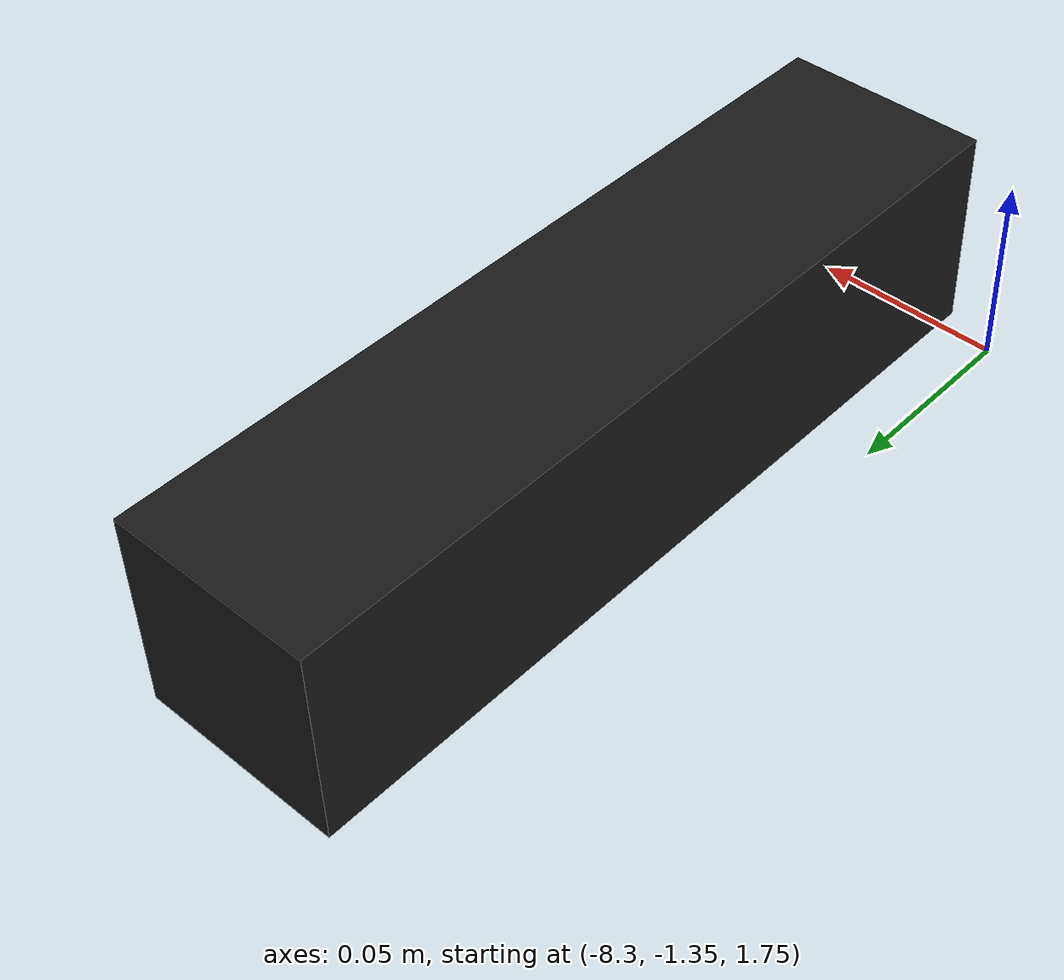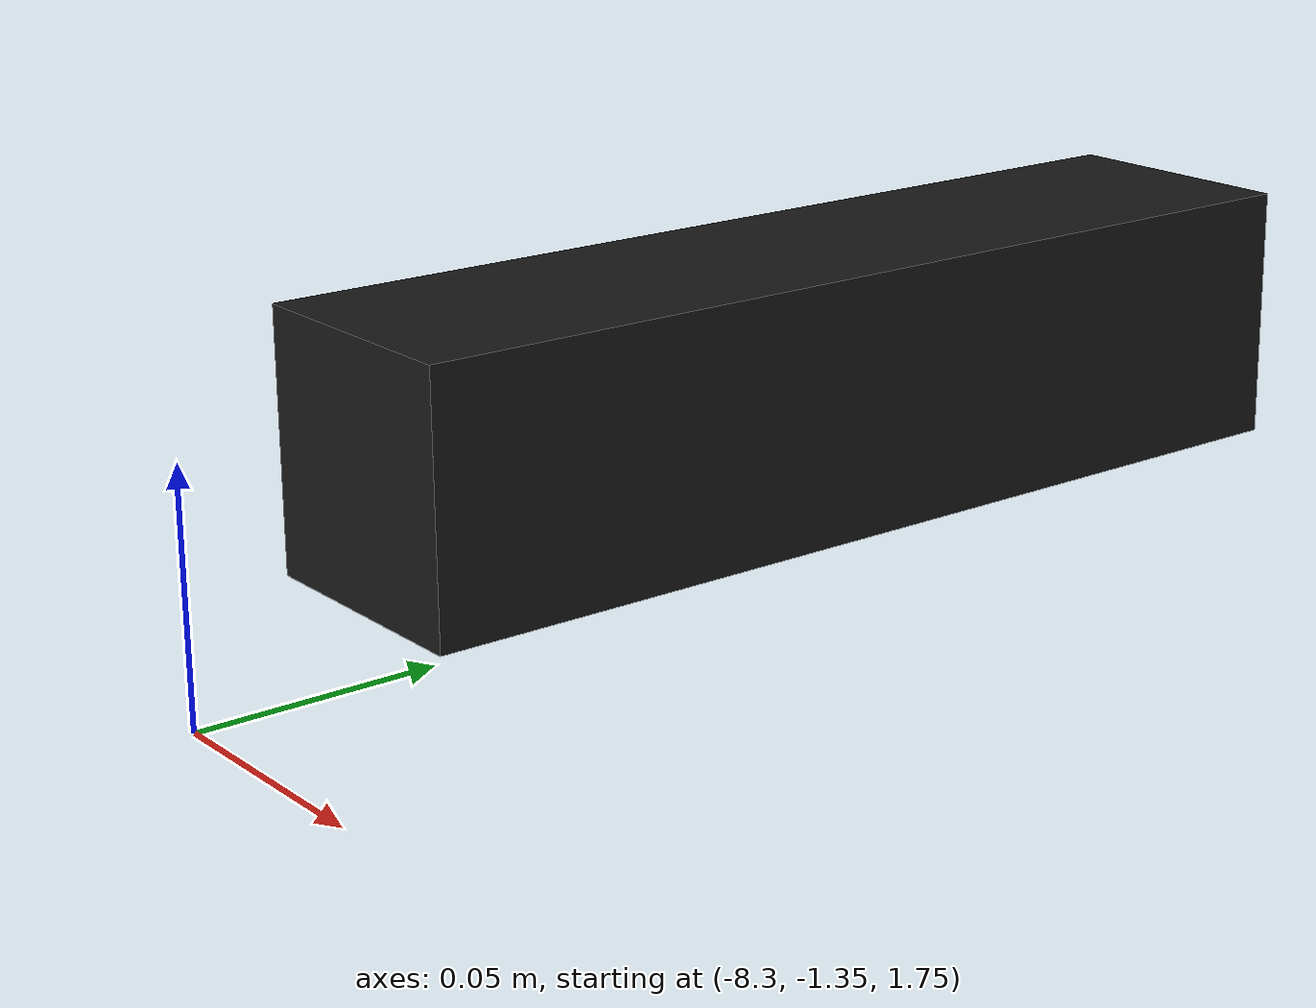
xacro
<?xml version="1.0"?>
<robot name="logical_camera"
  xmlns:xacro="http://www.ros.org/wiki/xacro">
  <xacro:arg name="prefix" default="logical_camera2_"/>
  <xacro:arg name="logical_camera_parent" default="world_interface"/>

  <!-- URDF -->
  <link name="$(arg logical_camera_parent)"/>

  <xacro:include filename="$(find hrwros_support)/urdf/logical_camera/logical_camera.urdf.xacro"/>
  <xacro:logical_camera_urdf prefix="$(arg prefix)" logical_camera_parent="$(arg logical_camera_parent)">
    <origin xyz="-8.3 -1.23 1.8" rpy="0 1.5708 0"/>
  </xacro:logical_camera_urdf>

  <!-- Gazebo -->
  <xacro:include filename="$(find hrwros_support)/urdf/logical_camera/logical_camera.gazebo.xacro"/>
</robot>

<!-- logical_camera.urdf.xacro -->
<robot name="logical_camera_urdf"
  xmlns:xacro="http://www.ros.org/wiki/xacro">
  <xacro:macro name="logical_camera_urdf" params="prefix logical_camera_parent *origin">

    <xacro:property name="length" value="0.2"/>
    <xacro:property name="width" value="0.050"/>
    <xacro:property name="height" value="0.050"/>

    <joint name="${prefix}world_joint" type="fixed">
      <xacro:insert_block name="origin" />
      <parent link="${logical_camera_parent}"/>
      <child link="${prefix}base_link"/>
    </joint>
    <!-- link list -->
    <link name="${prefix}base_link">
      <visual>
        <origin xyz="0 0 ${height / 2}" rpy="0 0 0" />
        <geometry>
          <box size="${width} ${length} ${height}" />
        </geometry>
        <material name="dark_grey">
          <color rgba="0.1 0.1 0.1 1.0"/>
        </material>
      </visual>
      <collision>
        <origin xyz="0 0 ${height / 2}" rpy="0 0 0" />
        <geometry>
          <box size="${width} ${length} ${height}" />
        </geometry>
        <material name="dark_grey"/>
      </collision>
      <inertial>
        <origin xyz="0 0 0" rpy="0 0 0" />
        <inertia ixx="0.1" ixy="0" ixz="0" iyy="0.1" iyz="0" izz="0.1" />
        <mass value="1" />
      </inertial>
    </link>

  </xacro:macro>
</robot>
